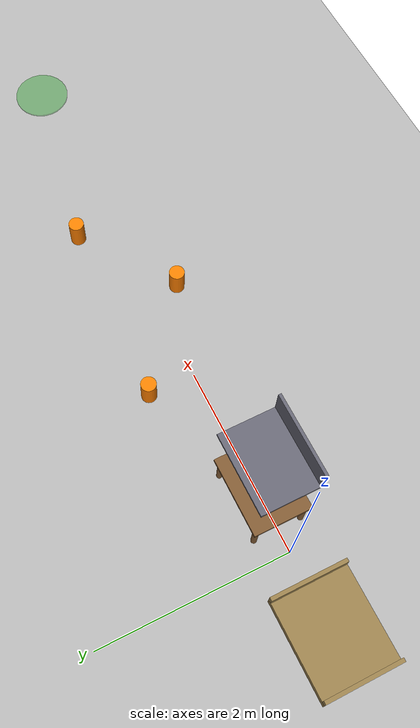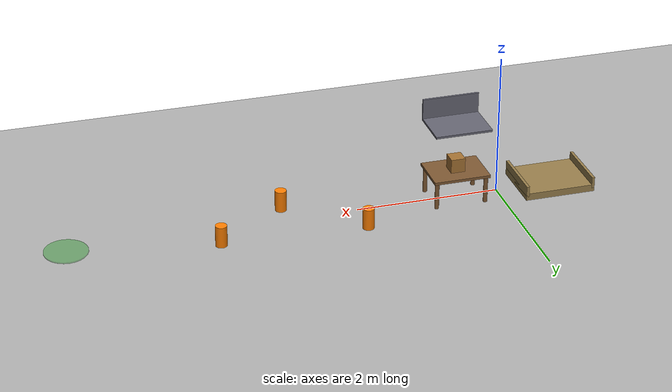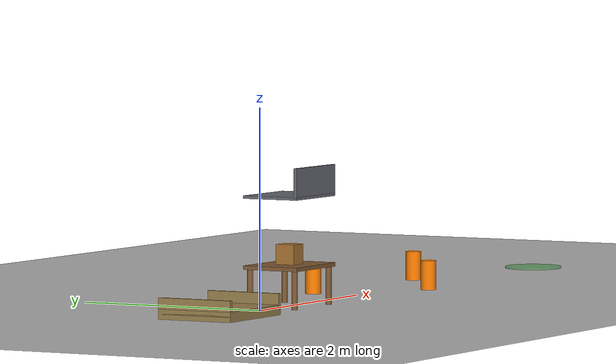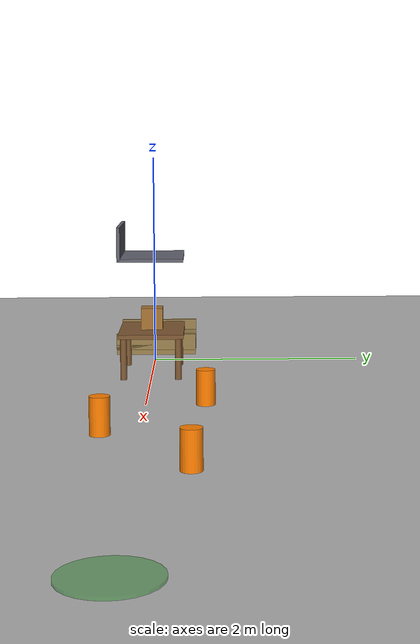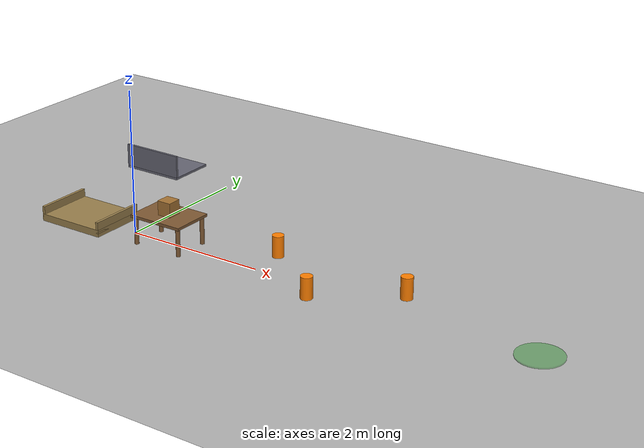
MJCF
<mujoco model="factory_floor">
  <option timestep="0.002" gravity="0 0 -9.81"/>

  <asset>
    <texture name="grid" type="2d" builtin="checker" rgb1="0.8 0.8 0.8" rgb2="0.6 0.6 0.6" width="512" height="512"/>
    <material name="floor_mat" texture="grid" texrepeat="8 8" reflectance="0.1"/>
    <material name="table_mat" rgba="0.5 0.35 0.2 1"/>
    <material name="shelf_mat" rgba="0.4 0.4 0.45 1"/>
    <material name="box_mat" rgba="0.65 0.45 0.2 1"/>
    <material name="pallet_mat" rgba="0.6 0.5 0.3 1"/>
    <material name="cone_mat" rgba="1.0 0.5 0.0 1"/>
  </asset>

  <worldbody>
    <!-- Factory floor -->
    <geom name="floor" type="plane" size="10 10 0.1" material="floor_mat"/>

    <!-- Pickup table -->
    <body name="pickup_table" pos="0.6 0 0.4">
      <geom name="table_top" type="box" size="0.4 0.3 0.02" material="table_mat"/>
      <geom name="table_leg1" type="cylinder" size="0.03 0.2" pos="-0.35 -0.25 -0.2" material="table_mat"/>
      <geom name="table_leg2" type="cylinder" size="0.03 0.2" pos="0.35 -0.25 -0.2" material="table_mat"/>
      <geom name="table_leg3" type="cylinder" size="0.03 0.2" pos="-0.35 0.25 -0.2" material="table_mat"/>
      <geom name="table_leg4" type="cylinder" size="0.03 0.2" pos="0.35 0.25 -0.2" material="table_mat"/>
    </body>

    <!-- Target shelf -->
    <body name="target_shelf" pos="0.6 0 1.1">
      <geom name="shelf_surface" type="box" size="0.4 0.3 0.015" material="shelf_mat"/>
      <geom name="shelf_back" type="box" size="0.4 0.015 0.15" pos="0 -0.285 0.15" material="shelf_mat"/>
    </body>

    <!-- Box (free body — can be repositioned by scenario) -->
    <body name="box_5kg" pos="0.6 0 0.52">
      <joint name="box_5kg_free" type="free"/>
      <geom name="box_geom" type="box" size="0.1 0.1 0.1" mass="5.0" material="box_mat"/>
    </body>

    <!-- Pallet -->
    <body name="pallet" pos="-0.8 0 0.05">
      <geom name="pallet_base" type="box" size="0.5 0.4 0.05" material="pallet_mat"/>
      <geom name="pallet_rail_left" type="box" size="0.02 0.4 0.08" pos="-0.48 0 0.08" material="pallet_mat"/>
      <geom name="pallet_rail_right" type="box" size="0.02 0.4 0.08" pos="0.48 0 0.08" material="pallet_mat"/>
    </body>

    <!-- Station B marker (walk target) -->
    <body name="station_b" pos="6 0 0.01">
      <geom name="station_b_marker" type="cylinder" size="0.3 0.01" rgba="0.2 0.6 0.2 0.5"/>
    </body>

    <!-- Obstacle cones -->
    <body name="cone_1" pos="2 0.5 0.15">
      <geom name="cone_1_geom" type="cylinder" size="0.08 0.15" material="cone_mat"/>
    </body>
    <body name="cone_2" pos="3 -0.3 0.15">
      <geom name="cone_2_geom" type="cylinder" size="0.08 0.15" material="cone_mat"/>
    </body>
    <body name="cone_3" pos="4 0.4 0.15">
      <geom name="cone_3_geom" type="cylinder" size="0.08 0.15" material="cone_mat"/>
    </body>

    <!-- Light -->
    <light name="overhead" pos="0 0 5" dir="0 0 -1" diffuse="0.9 0.9 0.9" specular="0.3 0.3 0.3"/>
  </worldbody>
</mujoco>
